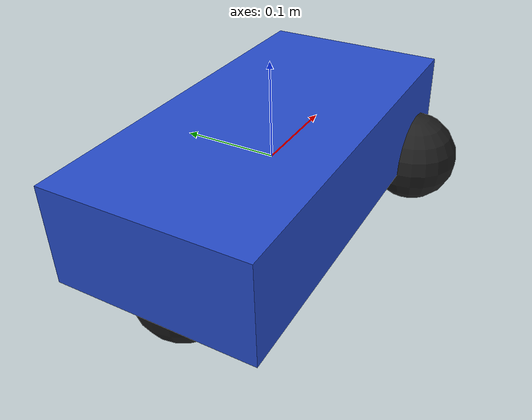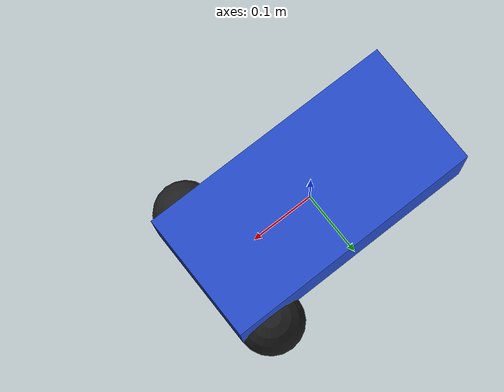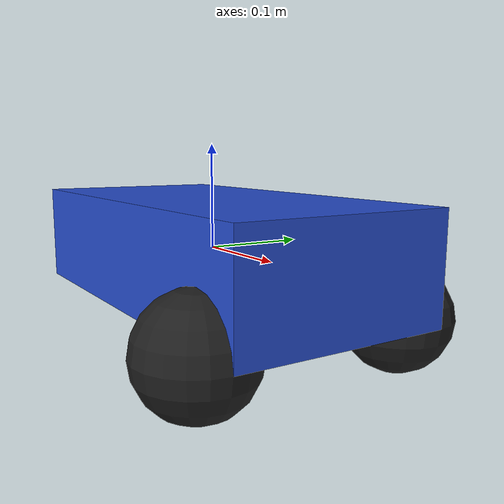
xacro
<?xml version="1.0"?>
<!-- Basic differential drive mobile base -->
<!--
Copied and modified from ROS1 example -
https://github.com/ros-simulation/gazebo_ros_demos/blob/kinetic-devel/diffbot_description/urdf/diffbot.xacro
-->
<robot xmlns:xacro="http://www.ros.org/wiki/xacro" name="diffdrive_robot">
  <!-- Enable setting arguments from the launch file -->
  <xacro:arg name="use_fake_hardware" default="false" />
  <xacro:arg name="fake_sensor_commands" default="false" />
  <xacro:arg name="prefix" default="" />

  <xacro:include filename="$(find ariac_description)/urdf/diffbot/diffbot_description.urdf.xacro" />

  <!-- Import all Gazebo-customization elements, including Gazebo colors -->
  <xacro:include filename="$(find ariac_description)/urdf/diffbot/diffbot.gazebo.xacro" />

  <!-- Import Rviz colors -->
  <xacro:include filename="$(find ariac_description)/urdf/diffbot/diffbot.materials.xacro" />

  <!-- Import diffbot ros2_control description -->
  <xacro:include filename="$(find ariac_description)/urdf/diffbot/diffbot.ros2_control.xacro" />

  <xacro:diffbot prefix="$(arg prefix)" />

  <xacro:diffbot_gazebo prefix="$(arg prefix)" />

  <xacro:diffbot_ros2_control
    name="DiffBotSystem"
    prefix="$(arg prefix)"/>

  <gazebo
    reference="world">
  </gazebo>

  <xacro:arg name="controllers" default="$(find ariac_description)/config/diffbot_controllers.yaml" />

  <gazebo>
    <plugin filename="libgazebo_ros2_control.so" name="gazebo_ros2_control">
      <ros>
        <namespace>/diffbot</namespace>
      </ros>
      <parameters>$(arg controllers)</parameters>
      <robot_param_node>/diffbot/robot_state_publisher</robot_param_node>
    </plugin>
  </gazebo>

</robot>

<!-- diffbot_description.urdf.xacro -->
<robot xmlns:xacro="http://www.ros.org/wiki/xacro">

  <xacro:macro name="diffbot" params="prefix">

  <!-- Constants for robot dimensions -->
  <xacro:property name="base_mass" value="1.5" /> <!-- arbitrary value for base mass -->
  <xacro:property name="base_width" value="0.2" />
  <xacro:property name="base_length" value="0.4" />
  <xacro:property name="base_height" value="0.1" />
  <xacro:property name="wheel_mass" value="2" /> <!-- arbitrary value for wheel mass -->
  <xacro:property name="wheel_radius" value="0.05" />

  <!-- Base Link -->
  <link name="${prefix}base">
    <collision>
      <origin xyz="0 0 0" rpy="0 0 0"/>
      <geometry>
        <box size="${base_length} ${base_width} ${base_height}"/>
      </geometry>
    </collision>

    <visual>
      <origin xyz="0 0 0" rpy="0 0 0"/>
      <geometry>
        <box size="${base_length} ${base_width} ${base_height}"/>
      </geometry>
    </visual>

    <inertial>
      <origin xyz="0 0 ${base_height + wheel_radius}" rpy="0 0 0"/>
      <mass value="${base_mass}"/>
      <inertia
        ixx="${(1/12) * base_mass * (base_height*base_height) + (base_length*base_length)}"
        ixy="0.0"
        ixz="0.0"
        iyy="${(1/12) * base_mass * (base_height*base_height) + (base_width*base_width)}"
        iyz="0.0"
        izz="${(1/12) * base_mass * (base_width*base_width) + (base_length*base_length)}"/>
    </inertial>
  </link>

  <!-- right wheel Link -->
  <link name="${prefix}right_wheel">
    <collision>
      <geometry>
        <sphere radius="${wheel_radius}"/>
      </geometry>
    </collision>

    <visual>
      <geometry>
        <sphere radius="${wheel_radius}"/>
      </geometry>
      <material name="black"/>
    </visual>

    <inertial>
      <mass value="${wheel_mass}"/>
      <inertia
        ixx="${(2/5) * wheel_mass * (wheel_radius*wheel_radius)}"
        ixy="0.0"
        ixz="0.0"
        iyy="${(2/5) * wheel_mass * (wheel_radius*wheel_radius)}"
        iyz="0.0"
        izz="${(2/5) * wheel_mass * (wheel_radius*wheel_radius)}"/>
    </inertial>
  </link>

  <joint name="${prefix}right_wheel_joint" type="continuous">
    <origin xyz="${base_length/2 - wheel_radius} ${-base_width/2 } ${-base_height/2}" rpy="0 0 0"/>
    <parent link="${prefix}base"/>
    <child link="${prefix}right_wheel"/>
    <axis xyz="0 1 0"/>
    <dynamics damping="0.2"/>
  </joint>

  <!-- left wheel Link -->
  <link name="${prefix}left_wheel">
    <collision>
      <geometry>
        <sphere radius="${wheel_radius}"/>
      </geometry>
    </collision>

    <visual>
      <geometry>
        <sphere radius="${wheel_radius}"/>
      </geometry>
      <material name="black"/>
    </visual>

    <inertial>
      <mass value="${wheel_mass}"/>
      <inertia
        ixx="${(2/5) * wheel_mass * (wheel_radius*wheel_radius)}"
        ixy="0.0"
        ixz="0.0"
        iyy="${(2/5) * wheel_mass * (wheel_radius*wheel_radius)}"
        iyz="0.0"
        izz="${(2/5) * wheel_mass * (wheel_radius*wheel_radius)}"/>
    </inertial>
  </link>

  <joint name="${prefix}left_wheel_joint" type="continuous">
    <origin xyz="${base_length/2 - wheel_radius} ${base_width/2} ${-base_height/2}" rpy="0 0 0"/>
    <parent link="${prefix}base"/>
    <child link="${prefix}left_wheel"/>
    <axis xyz="0 1 0"/>
    <dynamics damping="0.2"/>
  </joint>

  <!-- caster frontal wheel Link -->
  <link name="${prefix}caster">
    <collision>
      <geometry>
        <sphere radius="${wheel_radius}"/>
      </geometry>
    </collision>

    <visual>
      <geometry>
        <sphere radius="${wheel_radius}"/>
      </geometry>
      <material name="black"/>
    </visual>

    <inertial>
      <mass value="0.005"/>
      <inertia
        ixx="${(2/5) * wheel_mass * (wheel_radius*wheel_radius)}"
        ixy="0.0"
        ixz="0.0"
        iyy="${(2/5) * wheel_mass * (wheel_radius*wheel_radius)}"
        iyz="0.0"
        izz="${(2/5) * wheel_mass * (wheel_radius*wheel_radius)}"/>
    </inertial>
  </link>

  <joint name="${prefix}caster_joint" type="fixed">
    <origin xyz="${-base_length/2 + wheel_radius} 0 ${-base_height/2}" rpy="0 0 0"/>
    <parent link="${prefix}base"/>
    <child link="${prefix}caster"/>
  </joint>

  </xacro:macro>

</robot>
